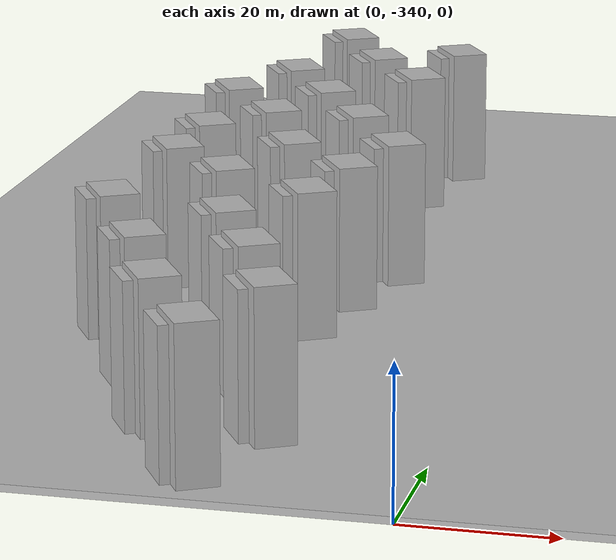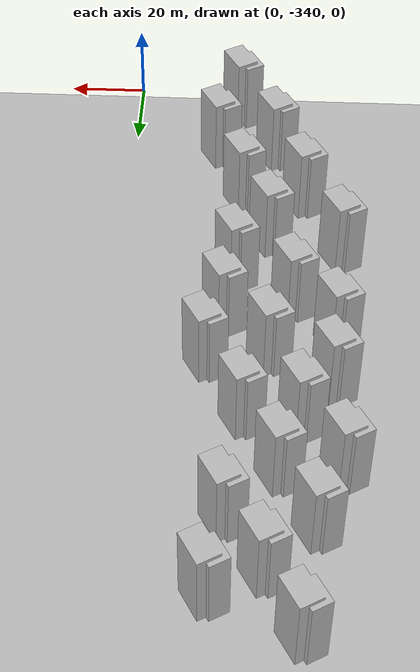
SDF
<sdf version="1.7">
 <world name="default">
  <model name="ground_plane">
   <static>1</static>
   <link name="link">
    <collision name="collision">
     <geometry><mesh><uri>model://ground_plane/scripts/plane.dae</uri><normal>0 0 1</normal></mesh></geometry>
     <surface><friction><ode><mu>100</mu><mu2>50</mu2></ode></friction></surface>
    </collision>
    <visual name="visual">
     <geometry><mesh><uri>model://ground_plane/scripts/plane.dae</uri><normal>0 0 1</normal></mesh></geometry>
     <material>
      <lighting>1</lighting>
      <script><uri>model://ground_plane/scripts/plane.jpg</uri><name>__default__</name></script>
      <shader type="pixel"/>
     </material>
    </visual>
   </link>
  </model>
  <model name="apartment4_clone_23">
   <static>1</static>
   <link name="link_0">
    <inertial>
     <mass>1</mass>
     <inertia>
      <ixx>0.166667</ixx>
      <ixy>0</ixy>
      <ixz>0</ixz>
      <iyy>0.166667</iyy>
      <iyz>0</iyz>
      <izz>0.166667</izz>
     </inertia>
    </inertial>
    <pose>1e-06 -0 0 0 -0 0</pose>
    <visual name="visual">
     <geometry>
      <mesh><uri>model://apartment4/scripts/apartment1.dae</uri><scale>0.14 0.14 0.175</scale></mesh>
     </geometry>
     <material>
      <lighting>1</lighting>
      <script><uri>model://apartment4/scripts/apartment1.jpg</uri><name>__default__</name></script>
      <shader type="pixel"/>
     </material>
    </visual>
    <collision name="collision">
     <geometry>
      <mesh><uri>model://apartment4/scripts/apartment1.dae</uri><scale>0.14 0.14 0.175</scale></mesh>
     </geometry>
     <surface>
      <friction>
       <ode><mu>1</mu><mu2>1</mu2><fdir1>0 0 0</fdir1><slip1>0</slip1><slip2>0</slip2></ode>
       <torsional>
        <coefficient>1</coefficient>
        <patch_radius>0</patch_radius>
        <surface_radius>0</surface_radius>
        <use_patch_radius>1</use_patch_radius>
        <ode><slip>0</slip></ode>
       </torsional>
      </friction>
      <bounce><restitution_coefficient>0</restitution_coefficient><threshold>1e+06</threshold></bounce>
      <contact>
       <collide_without_contact>0</collide_without_contact>
       <collide_without_contact_bitmask>1</collide_without_contact_bitmask>
       <collide_bitmask>1</collide_bitmask>
       <ode>
        <soft_cfm>0</soft_cfm>
        <soft_erp>0.2</soft_erp>
        <kp>1e+13</kp>
        <kd>1</kd>
        <max_vel>0.01</max_vel>
        <min_depth>0</min_depth>
       </ode>
       <bullet>
        <split_impulse>1</split_impulse>
        <split_impulse_penetration_threshold>-0.01</split_impulse_penetration_threshold>
        <soft_cfm>0</soft_cfm>
        <soft_erp>0.2</soft_erp>
        <kp>1e+13</kp>
        <kd>1</kd>
       </bullet>
      </contact>
     </surface>
    </collision>
   </link>
   <static>0</static>
   <pose>-23.4944 -175.495 0 0 -0 0.524325</pose>
  </model>
  <model name="apartment4_clone_35">
   <static>1</static>
   <link name="link_0">
    <inertial>
     <mass>1</mass>
     <inertia>
      <ixx>0.166667</ixx>
      <ixy>0</ixy>
      <ixz>0</ixz>
      <iyy>0.166667</iyy>
      <iyz>0</iyz>
      <izz>0.166667</izz>
     </inertia>
    </inertial>
    <pose>1e-06 -0 0 0 -0 0</pose>
    <visual name="visual">
     <geometry>
      <mesh><uri>model://apartment4/scripts/apartment1.dae</uri><scale>0.14 0.14 0.175</scale></mesh>
     </geometry>
     <material>
      <lighting>1</lighting>
      <script><uri>model://apartment4/scripts/apartment1.jpg</uri><name>__default__</name></script>
      <shader type="pixel"/>
     </material>
    </visual>
    <collision name="collision">
     <geometry>
      <mesh><uri>model://apartment4/scripts/apartment1.dae</uri><scale>0.14 0.14 0.175</scale></mesh>
     </geometry>
     <surface>
      <friction>
       <ode><mu>1</mu><mu2>1</mu2><fdir1>0 0 0</fdir1><slip1>0</slip1><slip2>0</slip2></ode>
       <torsional>
        <coefficient>1</coefficient>
        <patch_radius>0</patch_radius>
        <surface_radius>0</surface_radius>
        <use_patch_radius>1</use_patch_radius>
        <ode><slip>0</slip></ode>
       </torsional>
      </friction>
      <bounce><restitution_coefficient>0</restitution_coefficient><threshold>1e+06</threshold></bounce>
      <contact>
       <collide_without_contact>0</collide_without_contact>
       <collide_without_contact_bitmask>1</collide_without_contact_bitmask>
       <collide_bitmask>1</collide_bitmask>
       <ode>
        <soft_cfm>0</soft_cfm>
        <soft_erp>0.2</soft_erp>
        <kp>1e+13</kp>
        <kd>1</kd>
        <max_vel>0.01</max_vel>
        <min_depth>0</min_depth>
       </ode>
       <bullet>
        <split_impulse>1</split_impulse>
        <split_impulse_penetration_threshold>-0.01</split_impulse_penetration_threshold>
        <soft_cfm>0</soft_cfm>
        <soft_erp>0.2</soft_erp>
        <kp>1e+13</kp>
        <kd>1</kd>
       </bullet>
      </contact>
     </surface>
    </collision>
   </link>
   <static>0</static>
   <pose>-43.3556 -166.685 0 0 -0 0.524325</pose>
  </model>
  <model name="apartment4_clone_36">
   <static>1</static>
   <link name="link_0">
    <inertial>
     <mass>1</mass>
     <inertia>
      <ixx>0.166667</ixx>
      <ixy>0</ixy>
      <ixz>0</ixz>
      <iyy>0.166667</iyy>
      <iyz>0</iyz>
      <izz>0.166667</izz>
     </inertia>
    </inertial>
    <pose>1e-06 -0 0 0 -0 0</pose>
    <visual name="visual">
     <geometry>
      <mesh><uri>model://apartment4/scripts/apartment1.dae</uri><scale>0.14 0.14 0.175</scale></mesh>
     </geometry>
     <material>
      <lighting>1</lighting>
      <script><uri>model://apartment4/scripts/apartment1.jpg</uri><name>__default__</name></script>
      <shader type="pixel"/>
     </material>
    </visual>
    <collision name="collision">
     <geometry>
      <mesh><uri>model://apartment4/scripts/apartment1.dae</uri><scale>0.14 0.14 0.175</scale></mesh>
     </geometry>
     <surface>
      <friction>
       <ode><mu>1</mu><mu2>1</mu2><fdir1>0 0 0</fdir1><slip1>0</slip1><slip2>0</slip2></ode>
       <torsional>
        <coefficient>1</coefficient>
        <patch_radius>0</patch_radius>
        <surface_radius>0</surface_radius>
        <use_patch_radius>1</use_patch_radius>
        <ode><slip>0</slip></ode>
       </torsional>
      </friction>
      <bounce><restitution_coefficient>0</restitution_coefficient><threshold>1e+06</threshold></bounce>
      <contact>
       <collide_without_contact>0</collide_without_contact>
       <collide_without_contact_bitmask>1</collide_without_contact_bitmask>
       <collide_bitmask>1</collide_bitmask>
       <ode>
        <soft_cfm>0</soft_cfm>
        <soft_erp>0.2</soft_erp>
        <kp>1e+13</kp>
        <kd>1</kd>
        <max_vel>0.01</max_vel>
        <min_depth>0</min_depth>
       </ode>
       <bullet>
        <split_impulse>1</split_impulse>
        <split_impulse_penetration_threshold>-0.01</split_impulse_penetration_threshold>
        <soft_cfm>0</soft_cfm>
        <soft_erp>0.2</soft_erp>
        <kp>1e+13</kp>
        <kd>1</kd>
       </bullet>
      </contact>
     </surface>
    </collision>
   </link>
   <static>0</static>
   <pose>-35.4278 -181.358 0 0 -0 0.524325</pose>
  </model>
  <model name="apartment4_clone_37">
   <static>1</static>
   <link name="link_0">
    <inertial>
     <mass>1</mass>
     <inertia>
      <ixx>0.166667</ixx>
      <ixy>0</ixy>
      <ixz>0</ixz>
      <iyy>0.166667</iyy>
      <iyz>0</iyz>
      <izz>0.166667</izz>
     </inertia>
    </inertial>
    <pose>1e-06 -0 0 0 -0 0</pose>
    <visual name="visual">
     <geometry>
      <mesh><uri>model://apartment4/scripts/apartment1.dae</uri><scale>0.14 0.14 0.175</scale></mesh>
     </geometry>
     <material>
      <lighting>1</lighting>
      <script><uri>model://apartment4/scripts/apartment1.jpg</uri><name>__default__</name></script>
      <shader type="pixel"/>
     </material>
    </visual>
    <collision name="collision">
     <geometry>
      <mesh><uri>model://apartment4/scripts/apartment1.dae</uri><scale>0.14 0.14 0.175</scale></mesh>
     </geometry>
     <surface>
      <friction>
       <ode><mu>1</mu><mu2>1</mu2><fdir1>0 0 0</fdir1><slip1>0</slip1><slip2>0</slip2></ode>
       <torsional>
        <coefficient>1</coefficient>
        <patch_radius>0</patch_radius>
        <surface_radius>0</surface_radius>
        <use_patch_radius>1</use_patch_radius>
        <ode><slip>0</slip></ode>
       </torsional>
      </friction>
      <bounce><restitution_coefficient>0</restitution_coefficient><threshold>1e+06</threshold></bounce>
      <contact>
       <collide_without_contact>0</collide_without_contact>
       <collide_without_contact_bitmask>1</collide_without_contact_bitmask>
       <collide_bitmask>1</collide_bitmask>
       <ode>
        <soft_cfm>0</soft_cfm>
        <soft_erp>0.2</soft_erp>
        <kp>1e+13</kp>
        <kd>1</kd>
        <max_vel>0.01</max_vel>
        <min_depth>0</min_depth>
       </ode>
       <bullet>
        <split_impulse>1</split_impulse>
        <split_impulse_penetration_threshold>-0.01</split_impulse_penetration_threshold>
        <soft_cfm>0</soft_cfm>
        <soft_erp>0.2</soft_erp>
        <kp>1e+13</kp>
        <kd>1</kd>
       </bullet>
      </contact>
     </surface>
    </collision>
   </link>
   <static>0</static>
   <pose>-26.6613 -194.519 0 0 -0 0.524325</pose>
  </model>
  <model name="apartment4_clone_51">
   <static>1</static>
   <link name="link_0">
    <inertial>
     <mass>1</mass>
     <inertia>
      <ixx>0.166667</ixx>
      <ixy>0</ixy>
      <ixz>0</ixz>
      <iyy>0.166667</iyy>
      <iyz>0</iyz>
      <izz>0.166667</izz>
     </inertia>
    </inertial>
    <pose>1e-06 -0 0 0 -0 0</pose>
    <visual name="visual">
     <geometry>
      <mesh><uri>model://apartment4/scripts/apartment1.dae</uri><scale>0.14 0.14 0.175</scale></mesh>
     </geometry>
     <material>
      <lighting>1</lighting>
      <script><uri>model://apartment4/scripts/apartment1.jpg</uri><name>__default__</name></script>
      <shader type="pixel"/>
     </material>
    </visual>
    <collision name="collision">
     <geometry>
      <mesh><uri>model://apartment4/scripts/apartment1.dae</uri><scale>0.14 0.14 0.175</scale></mesh>
     </geometry>
     <surface>
      <friction>
       <ode><mu>1</mu><mu2>1</mu2><fdir1>0 0 0</fdir1><slip1>0</slip1><slip2>0</slip2></ode>
       <torsional>
        <coefficient>1</coefficient>
        <patch_radius>0</patch_radius>
        <surface_radius>0</surface_radius>
        <use_patch_radius>1</use_patch_radius>
        <ode><slip>0</slip></ode>
       </torsional>
      </friction>
      <bounce><restitution_coefficient>0</restitution_coefficient><threshold>1e+06</threshold></bounce>
      <contact>
       <collide_without_contact>0</collide_without_contact>
       <collide_without_contact_bitmask>1</collide_without_contact_bitmask>
       <collide_bitmask>1</collide_bitmask>
       <ode>
        <soft_cfm>0</soft_cfm>
        <soft_erp>0.2</soft_erp>
        <kp>1e+13</kp>
        <kd>1</kd>
        <max_vel>0.01</max_vel>
        <min_depth>0</min_depth>
       </ode>
       <bullet>
        <split_impulse>1</split_impulse>
        <split_impulse_penetration_threshold>-0.01</split_impulse_penetration_threshold>
        <soft_cfm>0</soft_cfm>
        <soft_erp>0.2</soft_erp>
        <kp>1e+13</kp>
        <kd>1</kd>
       </bullet>
      </contact>
     </surface>
    </collision>
   </link>
   <static>0</static>
   <pose>-20.9777 -238.346 0 0 -0 0.524325</pose>
  </model>
  <model name="apartment4_clone_52">
   <static>1</static>
   <link name="link_0">
    <inertial>
     <mass>1</mass>
     <inertia>
      <ixx>0.166667</ixx>
      <ixy>0</ixy>
      <ixz>0</ixz>
      <iyy>0.166667</iyy>
      <iyz>0</iyz>
      <izz>0.166667</izz>
     </inertia>
    </inertial>
    <pose>1e-06 -0 0 0 -0 0</pose>
    <visual name="visual">
     <geometry>
      <mesh><uri>model://apartment4/scripts/apartment1.dae</uri><scale>0.14 0.14 0.175</scale></mesh>
     </geometry>
     <material>
      <lighting>1</lighting>
      <script><uri>model://apartment4/scripts/apartment1.jpg</uri><name>__default__</name></script>
      <shader type="pixel"/>
     </material>
    </visual>
    <collision name="collision">
     <geometry>
      <mesh><uri>model://apartment4/scripts/apartment1.dae</uri><scale>0.14 0.14 0.175</scale></mesh>
     </geometry>
     <surface>
      <friction>
       <ode><mu>1</mu><mu2>1</mu2><fdir1>0 0 0</fdir1><slip1>0</slip1><slip2>0</slip2></ode>
       <torsional>
        <coefficient>1</coefficient>
        <patch_radius>0</patch_radius>
        <surface_radius>0</surface_radius>
        <use_patch_radius>1</use_patch_radius>
        <ode><slip>0</slip></ode>
       </torsional>
      </friction>
      <bounce><restitution_coefficient>0</restitution_coefficient><threshold>1e+06</threshold></bounce>
      <contact>
       <collide_without_contact>0</collide_without_contact>
       <collide_without_contact_bitmask>1</collide_without_contact_bitmask>
       <collide_bitmask>1</collide_bitmask>
       <ode>
        <soft_cfm>0</soft_cfm>
        <soft_erp>0.2</soft_erp>
        <kp>1e+13</kp>
        <kd>1</kd>
        <max_vel>0.01</max_vel>
        <min_depth>0</min_depth>
       </ode>
       <bullet>
        <split_impulse>1</split_impulse>
        <split_impulse_penetration_threshold>-0.01</split_impulse_penetration_threshold>
        <soft_cfm>0</soft_cfm>
        <soft_erp>0.2</soft_erp>
        <kp>1e+13</kp>
        <kd>1</kd>
       </bullet>
      </contact>
     </surface>
    </collision>
   </link>
   <static>0</static>
   <pose>-29.9273 -221.971 0 0 -0 0.524325</pose>
  </model>
  <model name="apartment4_clone_53">
   <static>1</static>
   <link name="link_0">
    <inertial>
     <mass>1</mass>
     <inertia>
      <ixx>0.166667</ixx>
      <ixy>0</ixy>
      <ixz>0</ixz>
      <iyy>0.166667</iyy>
      <iyz>0</iyz>
      <izz>0.166667</izz>
     </inertia>
    </inertial>
    <pose>1e-06 -0 0 0 -0 0</pose>
    <visual name="visual">
     <geometry>
      <mesh><uri>model://apartment4/scripts/apartment1.dae</uri><scale>0.14 0.14 0.175</scale></mesh>
     </geometry>
     <material>
      <lighting>1</lighting>
      <script><uri>model://apartment4/scripts/apartment1.jpg</uri><name>__default__</name></script>
      <shader type="pixel"/>
     </material>
    </visual>
    <collision name="collision">
     <geometry>
      <mesh><uri>model://apartment4/scripts/apartment1.dae</uri><scale>0.14 0.14 0.175</scale></mesh>
     </geometry>
     <surface>
      <friction>
       <ode><mu>1</mu><mu2>1</mu2><fdir1>0 0 0</fdir1><slip1>0</slip1><slip2>0</slip2></ode>
       <torsional>
        <coefficient>1</coefficient>
        <patch_radius>0</patch_radius>
        <surface_radius>0</surface_radius>
        <use_patch_radius>1</use_patch_radius>
        <ode><slip>0</slip></ode>
       </torsional>
      </friction>
      <bounce><restitution_coefficient>0</restitution_coefficient><threshold>1e+06</threshold></bounce>
      <contact>
       <collide_without_contact>0</collide_without_contact>
       <collide_without_contact_bitmask>1</collide_without_contact_bitmask>
       <collide_bitmask>1</collide_bitmask>
       <ode>
        <soft_cfm>0</soft_cfm>
        <soft_erp>0.2</soft_erp>
        <kp>1e+13</kp>
        <kd>1</kd>
        <max_vel>0.01</max_vel>
        <min_depth>0</min_depth>
       </ode>
       <bullet>
        <split_impulse>1</split_impulse>
        <split_impulse_penetration_threshold>-0.01</split_impulse_penetration_threshold>
        <soft_cfm>0</soft_cfm>
        <soft_erp>0.2</soft_erp>
        <kp>1e+13</kp>
        <kd>1</kd>
       </bullet>
      </contact>
     </surface>
    </collision>
   </link>
   <static>0</static>
   <pose>-38.4342 -206.776 0 0 -0 0.524325</pose>
  </model>
  <model name="apartment4_clone_54">
   <static>1</static>
   <link name="link_0">
    <inertial>
     <mass>1</mass>
     <inertia>
      <ixx>0.166667</ixx>
      <ixy>0</ixy>
      <ixz>0</ixz>
      <iyy>0.166667</iyy>
      <iyz>0</iyz>
      <izz>0.166667</izz>
     </inertia>
    </inertial>
    <pose>1e-06 -0 0 0 -0 0</pose>
    <visual name="visual">
     <geometry>
      <mesh><uri>model://apartment4/scripts/apartment1.dae</uri><scale>0.14 0.14 0.175</scale></mesh>
     </geometry>
     <material>
      <lighting>1</lighting>
      <script><uri>model://apartment4/scripts/apartment1.jpg</uri><name>__default__</name></script>
      <shader type="pixel"/>
     </material>
    </visual>
    <collision name="collision">
     <geometry>
      <mesh><uri>model://apartment4/scripts/apartment1.dae</uri><scale>0.14 0.14 0.175</scale></mesh>
     </geometry>
     <surface>
      <friction>
       <ode><mu>1</mu><mu2>1</mu2><fdir1>0 0 0</fdir1><slip1>0</slip1><slip2>0</slip2></ode>
       <torsional>
        <coefficient>1</coefficient>
        <patch_radius>0</patch_radius>
        <surface_radius>0</surface_radius>
        <use_patch_radius>1</use_patch_radius>
        <ode><slip>0</slip></ode>
       </torsional>
      </friction>
      <bounce><restitution_coefficient>0</restitution_coefficient><threshold>1e+06</threshold></bounce>
      <contact>
       <collide_without_contact>0</collide_without_contact>
       <collide_without_contact_bitmask>1</collide_without_contact_bitmask>
       <collide_bitmask>1</collide_bitmask>
       <ode>
        <soft_cfm>0</soft_cfm>
        <soft_erp>0.2</soft_erp>
        <kp>1e+13</kp>
        <kd>1</kd>
        <max_vel>0.01</max_vel>
        <min_depth>0</min_depth>
       </ode>
       <bullet>
        <split_impulse>1</split_impulse>
        <split_impulse_penetration_threshold>-0.01</split_impulse_penetration_threshold>
        <soft_cfm>0</soft_cfm>
        <soft_erp>0.2</soft_erp>
        <kp>1e+13</kp>
        <kd>1</kd>
       </bullet>
      </contact>
     </surface>
    </collision>
   </link>
   <static>0</static>
   <pose>-46.6954 -192.516 0 0 -0 0.524325</pose>
  </model>
  <model name="apartment4_clone_58">
   <static>1</static>
   <link name="link_0">
    <inertial>
     <mass>1</mass>
     <inertia>
      <ixx>0.166667</ixx>
      <ixy>0</ixy>
      <ixz>0</ixz>
      <iyy>0.166667</iyy>
      <iyz>0</iyz>
      <izz>0.166667</izz>
     </inertia>
    </inertial>
    <pose>1e-06 -0 0 0 -0 0</pose>
    <visual name="visual">
     <geometry>
      <mesh><uri>model://apartment4/scripts/apartment1.dae</uri><scale>0.14 0.14 0.175</scale></mesh>
     </geometry>
     <material>
      <lighting>1</lighting>
      <script><uri>model://apartment4/scripts/apartment1.jpg</uri><name>__default__</name></script>
      <shader type="pixel"/>
     </material>
    </visual>
    <collision name="collision">
     <geometry>
      <mesh><uri>model://apartment4/scripts/apartment1.dae</uri><scale>0.14 0.14 0.175</scale></mesh>
     </geometry>
     <surface>
      <friction>
       <ode><mu>1</mu><mu2>1</mu2><fdir1>0 0 0</fdir1><slip1>0</slip1><slip2>0</slip2></ode>
       <torsional>
        <coefficient>1</coefficient>
        <patch_radius>0</patch_radius>
        <surface_radius>0</surface_radius>
        <use_patch_radius>1</use_patch_radius>
        <ode><slip>0</slip></ode>
       </torsional>
      </friction>
      <bounce><restitution_coefficient>0</restitution_coefficient><threshold>1e+06</threshold></bounce>
      <contact>
       <collide_without_contact>0</collide_without_contact>
       <collide_without_contact_bitmask>1</collide_without_contact_bitmask>
       <collide_bitmask>1</collide_bitmask>
       <ode>
        <soft_cfm>0</soft_cfm>
        <soft_erp>0.2</soft_erp>
        <kp>1e+13</kp>
        <kd>1</kd>
        <max_vel>0.01</max_vel>
        <min_depth>0</min_depth>
       </ode>
       <bullet>
        <split_impulse>1</split_impulse>
        <split_impulse_penetration_threshold>-0.01</split_impulse_penetration_threshold>
        <soft_cfm>0</soft_cfm>
        <soft_erp>0.2</soft_erp>
        <kp>1e+13</kp>
        <kd>1</kd>
       </bullet>
      </contact>
     </surface>
    </collision>
   </link>
   <static>0</static>
   <pose>-27.4329 -329.928 0 0 -0 0.524325</pose>
  </model>
  <model name="apartment4_clone_59">
   <static>1</static>
   <link name="link_0">
    <inertial>
     <mass>1</mass>
     <inertia>
      <ixx>0.166667</ixx>
      <ixy>0</ixy>
      <ixz>0</ixz>
      <iyy>0.166667</iyy>
      <iyz>0</iyz>
      <izz>0.166667</izz>
     </inertia>
    </inertial>
    <pose>1e-06 -0 0 0 -0 0</pose>
    <visual name="visual">
     <geometry>
      <mesh><uri>model://apartment4/scripts/apartment1.dae</uri><scale>0.14 0.14 0.175</scale></mesh>
     </geometry>
     <material>
      <lighting>1</lighting>
      <script><uri>model://apartment4/scripts/apartment1.jpg</uri><name>__default__</name></script>
      <shader type="pixel"/>
     </material>
    </visual>
    <collision name="collision">
     <geometry>
      <mesh><uri>model://apartment4/scripts/apartment1.dae</uri><scale>0.14 0.14 0.175</scale></mesh>
     </geometry>
     <surface>
      <friction>
       <ode><mu>1</mu><mu2>1</mu2><fdir1>0 0 0</fdir1><slip1>0</slip1><slip2>0</slip2></ode>
       <torsional>
        <coefficient>1</coefficient>
        <patch_radius>0</patch_radius>
        <surface_radius>0</surface_radius>
        <use_patch_radius>1</use_patch_radius>
        <ode><slip>0</slip></ode>
       </torsional>
      </friction>
      <bounce><restitution_coefficient>0</restitution_coefficient><threshold>1e+06</threshold></bounce>
      <contact>
       <collide_without_contact>0</collide_without_contact>
       <collide_without_contact_bitmask>1</collide_without_contact_bitmask>
       <collide_bitmask>1</collide_bitmask>
       <ode>
        <soft_cfm>0</soft_cfm>
        <soft_erp>0.2</soft_erp>
        <kp>1e+13</kp>
        <kd>1</kd>
        <max_vel>0.01</max_vel>
        <min_depth>0</min_depth>
       </ode>
       <bullet>
        <split_impulse>1</split_impulse>
        <split_impulse_penetration_threshold>-0.01</split_impulse_penetration_threshold>
        <soft_cfm>0</soft_cfm>
        <soft_erp>0.2</soft_erp>
        <kp>1e+13</kp>
        <kd>1</kd>
       </bullet>
      </contact>
     </surface>
    </collision>
   </link>
   <static>0</static>
   <pose>-36.897 -312.721 0 0 -0 0.524325</pose>
  </model>
  <model name="apartment4_clone_60">
   <static>1</static>
   <link name="link_0">
    <inertial>
     <mass>1</mass>
     <inertia>
      <ixx>0.166667</ixx>
      <ixy>0</ixy>
      <ixz>0</ixz>
      <iyy>0.166667</iyy>
      <iyz>0</iyz>
      <izz>0.166667</izz>
     </inertia>
    </inertial>
    <pose>1e-06 -0 0 0 -0 0</pose>
    <visual name="visual">
     <geometry>
      <mesh><uri>model://apartment4/scripts/apartment1.dae</uri><scale>0.14 0.14 0.175</scale></mesh>
     </geometry>
     <material>
      <lighting>1</lighting>
      <script><uri>model://apartment4/scripts/apartment1.jpg</uri><name>__default__</name></script>
      <shader type="pixel"/>
     </material>
    </visual>
    <collision name="collision">
     <geometry>
      <mesh><uri>model://apartment4/scripts/apartment1.dae</uri><scale>0.14 0.14 0.175</scale></mesh>
     </geometry>
     <surface>
      <friction>
       <ode><mu>1</mu><mu2>1</mu2><fdir1>0 0 0</fdir1><slip1>0</slip1><slip2>0</slip2></ode>
       <torsional>
        <coefficient>1</coefficient>
        <patch_radius>0</patch_radius>
        <surface_radius>0</surface_radius>
        <use_patch_radius>1</use_patch_radius>
        <ode><slip>0</slip></ode>
       </torsional>
      </friction>
      <bounce><restitution_coefficient>0</restitution_coefficient><threshold>1e+06</threshold></bounce>
      <contact>
       <collide_without_contact>0</collide_without_contact>
       <collide_without_contact_bitmask>1</collide_without_contact_bitmask>
       <collide_bitmask>1</collide_bitmask>
       <ode>
        <soft_cfm>0</soft_cfm>
        <soft_erp>0.2</soft_erp>
        <kp>1e+13</kp>
        <kd>1</kd>
        <max_vel>0.01</max_vel>
        <min_depth>0</min_depth>
       </ode>
       <bullet>
        <split_impulse>1</split_impulse>
        <split_impulse_penetration_threshold>-0.01</split_impulse_penetration_threshold>
        <soft_cfm>0</soft_cfm>
        <soft_erp>0.2</soft_erp>
        <kp>1e+13</kp>
        <kd>1</kd>
       </bullet>
      </contact>
     </surface>
    </collision>
   </link>
   <static>0</static>
   <pose>-44.0733 -294.628 0 0 -0 0.524325</pose>
  </model>
  <model name="apartment4_clone_61">
   <static>1</static>
   <link name="link_0">
    <inertial>
     <mass>1</mass>
     <inertia>
      <ixx>0.166667</ixx>
      <ixy>0</ixy>
      <ixz>0</ixz>
      <iyy>0.166667</iyy>
      <iyz>0</iyz>
      <izz>0.166667</izz>
     </inertia>
    </inertial>
    <pose>1e-06 -0 0 0 -0 0</pose>
    <visual name="visual">
     <geometry>
      <mesh><uri>model://apartment4/scripts/apartment1.dae</uri><scale>0.14 0.14 0.175</scale></mesh>
     </geometry>
     <material>
      <lighting>1</lighting>
      <script><uri>model://apartment4/scripts/apartment1.jpg</uri><name>__default__</name></script>
      <shader type="pixel"/>
     </material>
    </visual>
    <collision name="collision">
     <geometry>
      <mesh><uri>model://apartment4/scripts/apartment1.dae</uri><scale>0.14 0.14 0.175</scale></mesh>
     </geometry>
     <surface>
      <friction>
       <ode><mu>1</mu><mu2>1</mu2><fdir1>0 0 0</fdir1><slip1>0</slip1><slip2>0</slip2></ode>
       <torsional>
        <coefficient>1</coefficient>
        <patch_radius>0</patch_radius>
        <surface_radius>0</surface_radius>
        <use_patch_radius>1</use_patch_radius>
        <ode><slip>0</slip></ode>
       </torsional>
      </friction>
      <bounce><restitution_coefficient>0</restitution_coefficient><threshold>1e+06</threshold></bounce>
      <contact>
       <collide_without_contact>0</collide_without_contact>
       <collide_without_contact_bitmask>1</collide_without_contact_bitmask>
       <collide_bitmask>1</collide_bitmask>
       <ode>
        <soft_cfm>0</soft_cfm>
        <soft_erp>0.2</soft_erp>
        <kp>1e+13</kp>
        <kd>1</kd>
        <max_vel>0.01</max_vel>
        <min_depth>0</min_depth>
       </ode>
       <bullet>
        <split_impulse>1</split_impulse>
        <split_impulse_penetration_threshold>-0.01</split_impulse_penetration_threshold>
        <soft_cfm>0</soft_cfm>
        <soft_erp>0.2</soft_erp>
        <kp>1e+13</kp>
        <kd>1</kd>
       </bullet>
      </contact>
     </surface>
    </collision>
   </link>
   <static>0</static>
   <pose>-53.2501 -275.318 0 0 -0 0.524325</pose>
  </model>
  <model name="apartment4_clone_74">
   <static>1</static>
   <link name="link_0">
    <inertial>
     <mass>1</mass>
     <inertia>
      <ixx>0.166667</ixx>
      <ixy>0</ixy>
      <ixz>0</ixz>
      <iyy>0.166667</iyy>
      <iyz>0</iyz>
      <izz>0.166667</izz>
     </inertia>
    </inertial>
    <pose>1e-06 -0 0 0 -0 0</pose>
    <visual name="visual">
     <geometry>
      <mesh><uri>model://apartment4/scripts/apartment1.dae</uri><scale>0.14 0.14 0.175</scale></mesh>
     </geometry>
     <material>
      <lighting>1</lighting>
      <script><uri>model://apartment4/scripts/apartment1.jpg</uri><name>__default__</name></script>
      <shader type="pixel"/>
     </material>
    </visual>
    <collision name="collision">
     <geometry>
      <mesh><uri>model://apartment4/scripts/apartment1.dae</uri><scale>0.14 0.14 0.175</scale></mesh>
     </geometry>
     <surface>
      <friction>
       <ode><mu>1</mu><mu2>1</mu2><fdir1>0 0 0</fdir1><slip1>0</slip1><slip2>0</slip2></ode>
       <torsional>
        <coefficient>1</coefficient>
        <patch_radius>0</patch_radius>
        <surface_radius>0</surface_radius>
        <use_patch_radius>1</use_patch_radius>
        <ode><slip>0</slip></ode>
       </torsional>
      </friction>
      <bounce><restitution_coefficient>0</restitution_coefficient><threshold>1e+06</threshold></bounce>
      <contact>
       <collide_without_contact>0</collide_without_contact>
       <collide_without_contact_bitmask>1</collide_without_contact_bitmask>
       <collide_bitmask>1</collide_bitmask>
       <ode>
        <soft_cfm>0</soft_cfm>
        <soft_erp>0.2</soft_erp>
        <kp>1e+13</kp>
        <kd>1</kd>
        <max_vel>0.01</max_vel>
        <min_depth>0</min_depth>
       </ode>
       <bullet>
        <split_impulse>1</split_impulse>
        <split_impulse_penetration_threshold>-0.01</split_impulse_penetration_threshold>
        <soft_cfm>0</soft_cfm>
        <soft_erp>0.2</soft_erp>
        <kp>1e+13</kp>
        <kd>1</kd>
       </bullet>
      </contact>
     </surface>
    </collision>
   </link>
   <static>0</static>
   <pose>-51.8434 -247.223 0 0 -0 0.524325</pose>
  </model>
  <model name="apartment4_clone_75">
   <static>1</static>
   <link name="link_0">
    <inertial>
     <mass>1</mass>
     <inertia>
      <ixx>0.166667</ixx>
      <ixy>0</ixy>
      <ixz>0</ixz>
      <iyy>0.166667</iyy>
      <iyz>0</iyz>
      <izz>0.166667</izz>
     </inertia>
    </inertial>
    <pose>1e-06 -0 0 0 -0 0</pose>
    <visual name="visual">
     <geometry>
      <mesh><uri>model://apartment4/scripts/apartment1.dae</uri><scale>0.14 0.14 0.175</scale></mesh>
     </geometry>
     <material>
      <lighting>1</lighting>
      <script><uri>model://apartment4/scripts/apartment1.jpg</uri><name>__default__</name></script>
      <shader type="pixel"/>
     </material>
    </visual>
    <collision name="collision">
     <geometry>
      <mesh><uri>model://apartment4/scripts/apartment1.dae</uri><scale>0.14 0.14 0.175</scale></mesh>
     </geometry>
     <surface>
      <friction>
       <ode><mu>1</mu><mu2>1</mu2><fdir1>0 0 0</fdir1><slip1>0</slip1><slip2>0</slip2></ode>
       <torsional>
        <coefficient>1</coefficient>
        <patch_radius>0</patch_radius>
        <surface_radius>0</surface_radius>
        <use_patch_radius>1</use_patch_radius>
        <ode><slip>0</slip></ode>
       </torsional>
      </friction>
      <bounce><restitution_coefficient>0</restitution_coefficient><threshold>1e+06</threshold></bounce>
      <contact>
       <collide_without_contact>0</collide_without_contact>
       <collide_without_contact_bitmask>1</collide_without_contact_bitmask>
       <collide_bitmask>1</collide_bitmask>
       <ode>
        <soft_cfm>0</soft_cfm>
        <soft_erp>0.2</soft_erp>
        <kp>1e+13</kp>
        <kd>1</kd>
        <max_vel>0.01</max_vel>
        <min_depth>0</min_depth>
       </ode>
       <bullet>
        <split_impulse>1</split_impulse>
        <split_impulse_penetration_threshold>-0.01</split_impulse_penetration_threshold>
        <soft_cfm>0</soft_cfm>
        <soft_erp>0.2</soft_erp>
        <kp>1e+13</kp>
        <kd>1</kd>
       </bullet>
      </contact>
     </surface>
    </collision>
   </link>
   <static>0</static>
   <pose>-41.525 -258.092 0 0 -0 0.524325</pose>
  </model>
  <model name="apartment4_clone_76">
   <static>1</static>
   <link name="link_0">
    <inertial>
     <mass>1</mass>
     <inertia>
      <ixx>0.166667</ixx>
      <ixy>0</ixy>
      <ixz>0</ixz>
      <iyy>0.166667</iyy>
      <iyz>0</iyz>
      <izz>0.166667</izz>
     </inertia>
    </inertial>
    <pose>1e-06 -0 0 0 -0 0</pose>
    <visual name="visual">
     <geometry>
      <mesh><uri>model://apartment4/scripts/apartment1.dae</uri><scale>0.14 0.14 0.175</scale></mesh>
     </geometry>
     <material>
      <lighting>1</lighting>
      <script><uri>model://apartment4/scripts/apartment1.jpg</uri><name>__default__</name></script>
      <shader type="pixel"/>
     </material>
    </visual>
    <collision name="collision">
     <geometry>
      <mesh><uri>model://apartment4/scripts/apartment1.dae</uri><scale>0.14 0.14 0.175</scale></mesh>
     </geometry>
     <surface>
      <friction>
       <ode><mu>1</mu><mu2>1</mu2><fdir1>0 0 0</fdir1><slip1>0</slip1><slip2>0</slip2></ode>
       <torsional>
        <coefficient>1</coefficient>
        <patch_radius>0</patch_radius>
        <surface_radius>0</surface_radius>
        <use_patch_radius>1</use_patch_radius>
        <ode><slip>0</slip></ode>
       </torsional>
      </friction>
      <bounce><restitution_coefficient>0</restitution_coefficient><threshold>1e+06</threshold></bounce>
      <contact>
       <collide_without_contact>0</collide_without_contact>
       <collide_without_contact_bitmask>1</collide_without_contact_bitmask>
       <collide_bitmask>1</collide_bitmask>
       <ode>
        <soft_cfm>0</soft_cfm>
        <soft_erp>0.2</soft_erp>
        <kp>1e+13</kp>
        <kd>1</kd>
        <max_vel>0.01</max_vel>
        <min_depth>0</min_depth>
       </ode>
       <bullet>
        <split_impulse>1</split_impulse>
        <split_impulse_penetration_threshold>-0.01</split_impulse_penetration_threshold>
        <soft_cfm>0</soft_cfm>
        <soft_erp>0.2</soft_erp>
        <kp>1e+13</kp>
        <kd>1</kd>
       </bullet>
      </contact>
     </surface>
    </collision>
   </link>
   <static>0</static>
   <pose>-35.6991 -279.946 0 0 -0 0.524325</pose>
  </model>
  <model name="apartment4_clone_77">
   <static>1</static>
   <link name="link_0">
    <inertial>
     <mass>1</mass>
     <inertia>
      <ixx>0.166667</ixx>
      <ixy>0</ixy>
      <ixz>0</ixz>
      <iyy>0.166667</iyy>
      <iyz>0</iyz>
      <izz>0.166667</izz>
     </inertia>
    </inertial>
    <pose>1e-06 -0 0 0 -0 0</pose>
    <visual name="visual">
     <geometry>
      <mesh><uri>model://apartment4/scripts/apartment1.dae</uri><scale>0.14 0.14 0.175</scale></mesh>
     </geometry>
     <material>
      <lighting>1</lighting>
      <script><uri>model://apartment4/scripts/apartment1.jpg</uri><name>__default__</name></script>
      <shader type="pixel"/>
     </material>
    </visual>
    <collision name="collision">
     <geometry>
      <mesh><uri>model://apartment4/scripts/apartment1.dae</uri><scale>0.14 0.14 0.175</scale></mesh>
     </geometry>
     <surface>
      <friction>
       <ode><mu>1</mu><mu2>1</mu2><fdir1>0 0 0</fdir1><slip1>0</slip1><slip2>0</slip2></ode>
       <torsional>
        <coefficient>1</coefficient>
        <patch_radius>0</patch_radius>
        <surface_radius>0</surface_radius>
        <use_patch_radius>1</use_patch_radius>
        <ode><slip>0</slip></ode>
       </torsional>
      </friction>
      <bounce><restitution_coefficient>0</restitution_coefficient><threshold>1e+06</threshold></bounce>
      <contact>
       <collide_without_contact>0</collide_without_contact>
       <collide_without_contact_bitmask>1</collide_without_contact_bitmask>
       <collide_bitmask>1</collide_bitmask>
       <ode>
        <soft_cfm>0</soft_cfm>
        <soft_erp>0.2</soft_erp>
        <kp>1e+13</kp>
        <kd>1</kd>
        <max_vel>0.01</max_vel>
        <min_depth>0</min_depth>
       </ode>
       <bullet>
        <split_impulse>1</split_impulse>
        <split_impulse_penetration_threshold>-0.01</split_impulse_penetration_threshold>
        <soft_cfm>0</soft_cfm>
        <soft_erp>0.2</soft_erp>
        <kp>1e+13</kp>
        <kd>1</kd>
       </bullet>
      </contact>
     </surface>
    </collision>
   </link>
   <static>0</static>
   <pose>-28.5625 -295.438 0 0 -0 0.524325</pose>
  </model>
  <model name="apartment4_clone_78">
   <static>1</static>
   <link name="link_0">
    <inertial>
     <mass>1</mass>
     <inertia>
      <ixx>0.166667</ixx>
      <ixy>0</ixy>
      <ixz>0</ixz>
      <iyy>0.166667</iyy>
      <iyz>0</iyz>
      <izz>0.166667</izz>
     </inertia>
    </inertial>
    <pose>1e-06 -0 0 0 -0 0</pose>
    <visual name="visual">
     <geometry>
      <mesh><uri>model://apartment4/scripts/apartment1.dae</uri><scale>0.14 0.14 0.175</scale></mesh>
     </geometry>
     <material>
      <lighting>1</lighting>
      <script><uri>model://apartment4/scripts/apartment1.jpg</uri><name>__default__</name></script>
      <shader type="pixel"/>
     </material>
    </visual>
    <collision name="collision">
     <geometry>
      <mesh><uri>model://apartment4/scripts/apartment1.dae</uri><scale>0.14 0.14 0.175</scale></mesh>
     </geometry>
     <surface>
      <friction>
       <ode><mu>1</mu><mu2>1</mu2><fdir1>0 0 0</fdir1><slip1>0</slip1><slip2>0</slip2></ode>
       <torsional>
        <coefficient>1</coefficient>
        <patch_radius>0</patch_radius>
        <surface_radius>0</surface_radius>
        <use_patch_radius>1</use_patch_radius>
        <ode><slip>0</slip></ode>
       </torsional>
      </friction>
      <bounce><restitution_coefficient>0</restitution_coefficient><threshold>1e+06</threshold></bounce>
      <contact>
       <collide_without_contact>0</collide_without_contact>
       <collide_without_contact_bitmask>1</collide_without_contact_bitmask>
       <collide_bitmask>1</collide_bitmask>
       <ode>
        <soft_cfm>0</soft_cfm>
        <soft_erp>0.2</soft_erp>
        <kp>1e+13</kp>
        <kd>1</kd>
        <max_vel>0.01</max_vel>
        <min_depth>0</min_depth>
       </ode>
       <bullet>
        <split_impulse>1</split_impulse>
        <split_impulse_penetration_threshold>-0.01</split_impulse_penetration_threshold>
        <soft_cfm>0</soft_cfm>
        <soft_erp>0.2</soft_erp>
        <kp>1e+13</kp>
        <kd>1</kd>
       </bullet>
      </contact>
     </surface>
    </collision>
   </link>
   <static>0</static>
   <pose>-21.9916 -313.018 0 0 -0 0.524325</pose>
  </model>
  <model name="apartment4_clone_85">
   <static>1</static>
   <link name="link_0">
    <inertial>
     <mass>1</mass>
     <inertia>
      <ixx>0.166667</ixx>
      <ixy>0</ixy>
      <ixz>0</ixz>
      <iyy>0.166667</iyy>
      <iyz>0</iyz>
      <izz>0.166667</izz>
     </inertia>
    </inertial>
    <pose>1e-06 -0 0 0 -0 0</pose>
    <visual name="visual">
     <geometry>
      <mesh><uri>model://apartment4/scripts/apartment1.dae</uri><scale>0.14 0.14 0.175</scale></mesh>
     </geometry>
     <material>
      <lighting>1</lighting>
      <script><uri>model://apartment4/scripts/apartment1.jpg</uri><name>__default__</name></script>
      <shader type="pixel"/>
     </material>
    </visual>
    <collision name="collision">
     <geometry>
      <mesh><uri>model://apartment4/scripts/apartment1.dae</uri><scale>0.14 0.14 0.175</scale></mesh>
     </geometry>
     <surface>
      <friction>
       <ode><mu>1</mu><mu2>1</mu2><fdir1>0 0 0</fdir1><slip1>0</slip1><slip2>0</slip2></ode>
       <torsional>
        <coefficient>1</coefficient>
        <patch_radius>0</patch_radius>
        <surface_radius>0</surface_radius>
        <use_patch_radius>1</use_patch_radius>
        <ode><slip>0</slip></ode>
       </torsional>
      </friction>
      <bounce><restitution_coefficient>0</restitution_coefficient><threshold>1e+06</threshold></bounce>
      <contact>
       <collide_without_contact>0</collide_without_contact>
       <collide_without_contact_bitmask>1</collide_without_contact_bitmask>
       <collide_bitmask>1</collide_bitmask>
       <ode>
        <soft_cfm>0</soft_cfm>
        <soft_erp>0.2</soft_erp>
        <kp>1e+13</kp>
        <kd>1</kd>
        <max_vel>0.01</max_vel>
        <min_depth>0</min_depth>
       </ode>
       <bullet>
        <split_impulse>1</split_impulse>
        <split_impulse_penetration_threshold>-0.01</split_impulse_penetration_threshold>
        <soft_cfm>0</soft_cfm>
        <soft_erp>0.2</soft_erp>
        <kp>1e+13</kp>
        <kd>1</kd>
       </bullet>
      </contact>
     </surface>
    </collision>
   </link>
   <static>0</static>
   <pose>-52.8331 -208.177 0 0 -0 0.524325</pose>
  </model>
  <model name="apartment4_clone_86">
   <static>1</static>
   <link name="link_0">
    <inertial>
     <mass>1</mass>
     <inertia>
      <ixx>0.166667</ixx>
      <ixy>0</ixy>
      <ixz>0</ixz>
      <iyy>0.166667</iyy>
      <iyz>0</iyz>
      <izz>0.166667</izz>
     </inertia>
    </inertial>
    <pose>1e-06 -0 0 0 -0 0</pose>
    <visual name="visual">
     <geometry>
      <mesh><uri>model://apartment4/scripts/apartment1.dae</uri><scale>0.14 0.14 0.175</scale></mesh>
     </geometry>
     <material>
      <lighting>1</lighting>
      <script><uri>model://apartment4/scripts/apartment1.jpg</uri><name>__default__</name></script>
      <shader type="pixel"/>
     </material>
    </visual>
    <collision name="collision">
     <geometry>
      <mesh><uri>model://apartment4/scripts/apartment1.dae</uri><scale>0.14 0.14 0.175</scale></mesh>
     </geometry>
     <surface>
      <friction>
       <ode><mu>1</mu><mu2>1</mu2><fdir1>0 0 0</fdir1><slip1>0</slip1><slip2>0</slip2></ode>
       <torsional>
        <coefficient>1</coefficient>
        <patch_radius>0</patch_radius>
        <surface_radius>0</surface_radius>
        <use_patch_radius>1</use_patch_radius>
        <ode><slip>0</slip></ode>
       </torsional>
      </friction>
      <bounce><restitution_coefficient>0</restitution_coefficient><threshold>1e+06</threshold></bounce>
      <contact>
       <collide_without_contact>0</collide_without_contact>
       <collide_without_contact_bitmask>1</collide_without_contact_bitmask>
       <collide_bitmask>1</collide_bitmask>
       <ode>
        <soft_cfm>0</soft_cfm>
        <soft_erp>0.2</soft_erp>
        <kp>1e+13</kp>
        <kd>1</kd>
        <max_vel>0.01</max_vel>
        <min_depth>0</min_depth>
       </ode>
       <bullet>
        <split_impulse>1</split_impulse>
        <split_impulse_penetration_threshold>-0.01</split_impulse_penetration_threshold>
        <soft_cfm>0</soft_cfm>
        <soft_erp>0.2</soft_erp>
        <kp>1e+13</kp>
        <kd>1</kd>
       </bullet>
      </contact>
     </surface>
    </collision>
   </link>
   <static>0</static>
   <pose>-51.0148 -232.331 0 0 -0 0.524325</pose>
  </model>
  <model name="apartment4_clone_87">
   <static>1</static>
   <link name="link_0">
    <inertial>
     <mass>1</mass>
     <inertia>
      <ixx>0.166667</ixx>
      <ixy>0</ixy>
      <ixz>0</ixz>
      <iyy>0.166667</iyy>
      <iyz>0</iyz>
      <izz>0.166667</izz>
     </inertia>
    </inertial>
    <pose>1e-06 -0 0 0 -0 0</pose>
    <visual name="visual">
     <geometry>
      <mesh><uri>model://apartment4/scripts/apartment1.dae</uri><scale>0.14 0.14 0.175</scale></mesh>
     </geometry>
     <material>
      <lighting>1</lighting>
      <script><uri>model://apartment4/scripts/apartment1.jpg</uri><name>__default__</name></script>
      <shader type="pixel"/>
     </material>
    </visual>
    <collision name="collision">
     <geometry>
      <mesh><uri>model://apartment4/scripts/apartment1.dae</uri><scale>0.14 0.14 0.175</scale></mesh>
     </geometry>
     <surface>
      <friction>
       <ode><mu>1</mu><mu2>1</mu2><fdir1>0 0 0</fdir1><slip1>0</slip1><slip2>0</slip2></ode>
       <torsional>
        <coefficient>1</coefficient>
        <patch_radius>0</patch_radius>
        <surface_radius>0</surface_radius>
        <use_patch_radius>1</use_patch_radius>
        <ode><slip>0</slip></ode>
       </torsional>
      </friction>
      <bounce><restitution_coefficient>0</restitution_coefficient><threshold>1e+06</threshold></bounce>
      <contact>
       <collide_without_contact>0</collide_without_contact>
       <collide_without_contact_bitmask>1</collide_without_contact_bitmask>
       <collide_bitmask>1</collide_bitmask>
       <ode>
        <soft_cfm>0</soft_cfm>
        <soft_erp>0.2</soft_erp>
        <kp>1e+13</kp>
        <kd>1</kd>
        <max_vel>0.01</max_vel>
        <min_depth>0</min_depth>
       </ode>
       <bullet>
        <split_impulse>1</split_impulse>
        <split_impulse_penetration_threshold>-0.01</split_impulse_penetration_threshold>
        <soft_cfm>0</soft_cfm>
        <soft_erp>0.2</soft_erp>
        <kp>1e+13</kp>
        <kd>1</kd>
       </bullet>
      </contact>
     </surface>
    </collision>
   </link>
   <static>0</static>
   <pose>-43.5017 -221.739 0 0 -0 0.524325</pose>
  </model>
  <model name="apartment4_clone_88">
   <static>1</static>
   <link name="link_0">
    <inertial>
     <mass>1</mass>
     <inertia>
      <ixx>0.166667</ixx>
      <ixy>0</ixy>
      <ixz>0</ixz>
      <iyy>0.166667</iyy>
      <iyz>0</iyz>
      <izz>0.166667</izz>
     </inertia>
    </inertial>
    <pose>1e-06 -0 0 0 -0 0</pose>
    <visual name="visual">
     <geometry>
      <mesh><uri>model://apartment4/scripts/apartment1.dae</uri><scale>0.14 0.14 0.175</scale></mesh>
     </geometry>
     <material>
      <lighting>1</lighting>
      <script><uri>model://apartment4/scripts/apartment1.jpg</uri><name>__default__</name></script>
      <shader type="pixel"/>
     </material>
    </visual>
    <collision name="collision">
     <geometry>
      <mesh><uri>model://apartment4/scripts/apartment1.dae</uri><scale>0.14 0.14 0.175</scale></mesh>
     </geometry>
     <surface>
      <friction>
       <ode><mu>1</mu><mu2>1</mu2><fdir1>0 0 0</fdir1><slip1>0</slip1><slip2>0</slip2></ode>
       <torsional>
        <coefficient>1</coefficient>
        <patch_radius>0</patch_radius>
        <surface_radius>0</surface_radius>
        <use_patch_radius>1</use_patch_radius>
        <ode><slip>0</slip></ode>
       </torsional>
      </friction>
      <bounce><restitution_coefficient>0</restitution_coefficient><threshold>1e+06</threshold></bounce>
      <contact>
       <collide_without_contact>0</collide_without_contact>
       <collide_without_contact_bitmask>1</collide_without_contact_bitmask>
       <collide_bitmask>1</collide_bitmask>
       <ode>
        <soft_cfm>0</soft_cfm>
        <soft_erp>0.2</soft_erp>
        <kp>1e+13</kp>
        <kd>1</kd>
        <max_vel>0.01</max_vel>
        <min_depth>0</min_depth>
       </ode>
       <bullet>
        <split_impulse>1</split_impulse>
        <split_impulse_penetration_threshold>-0.01</split_impulse_penetration_threshold>
        <soft_cfm>0</soft_cfm>
        <soft_erp>0.2</soft_erp>
        <kp>1e+13</kp>
        <kd>1</kd>
       </bullet>
      </contact>
     </surface>
    </collision>
   </link>
   <static>0</static>
   <pose>-35.9312 -240.795 0 0 -0 0.524325</pose>
  </model>
  <model name="apartment4_clone_89">
   <static>1</static>
   <link name="link_0">
    <inertial>
     <mass>1</mass>
     <inertia>
      <ixx>0.166667</ixx>
      <ixy>0</ixy>
      <ixz>0</ixz>
      <iyy>0.166667</iyy>
      <iyz>0</iyz>
      <izz>0.166667</izz>
     </inertia>
    </inertial>
    <pose>1e-06 -0 0 0 -0 0</pose>
    <visual name="visual">
     <geometry>
      <mesh><uri>model://apartment4/scripts/apartment1.dae</uri><scale>0.14 0.14 0.175</scale></mesh>
     </geometry>
     <material>
      <lighting>1</lighting>
      <script><uri>model://apartment4/scripts/apartment1.jpg</uri><name>__default__</name></script>
      <shader type="pixel"/>
     </material>
    </visual>
    <collision name="collision">
     <geometry>
      <mesh><uri>model://apartment4/scripts/apartment1.dae</uri><scale>0.14 0.14 0.175</scale></mesh>
     </geometry>
     <surface>
      <friction>
       <ode><mu>1</mu><mu2>1</mu2><fdir1>0 0 0</fdir1><slip1>0</slip1><slip2>0</slip2></ode>
       <torsional>
        <coefficient>1</coefficient>
        <patch_radius>0</patch_radius>
        <surface_radius>0</surface_radius>
        <use_patch_radius>1</use_patch_radius>
        <ode><slip>0</slip></ode>
       </torsional>
      </friction>
      <bounce><restitution_coefficient>0</restitution_coefficient><threshold>1e+06</threshold></bounce>
      <contact>
       <collide_without_contact>0</collide_without_contact>
       <collide_without_contact_bitmask>1</collide_without_contact_bitmask>
       <collide_bitmask>1</collide_bitmask>
       <ode>
        <soft_cfm>0</soft_cfm>
        <soft_erp>0.2</soft_erp>
        <kp>1e+13</kp>
        <kd>1</kd>
        <max_vel>0.01</max_vel>
        <min_depth>0</min_depth>
       </ode>
       <bullet>
        <split_impulse>1</split_impulse>
        <split_impulse_penetration_threshold>-0.01</split_impulse_penetration_threshold>
        <soft_cfm>0</soft_cfm>
        <soft_erp>0.2</soft_erp>
        <kp>1e+13</kp>
        <kd>1</kd>
       </bullet>
      </contact>
     </surface>
    </collision>
   </link>
   <static>0</static>
   <pose>-24.9669 -252.864 0 0 -0 0.524325</pose>
  </model>
  <model name="apartment4_clone_90">
   <static>1</static>
   <link name="link_0">
    <inertial>
     <mass>1</mass>
     <inertia>
      <ixx>0.166667</ixx>
      <ixy>0</ixy>
      <ixz>0</ixz>
      <iyy>0.166667</iyy>
      <iyz>0</iyz>
      <izz>0.166667</izz>
     </inertia>
    </inertial>
    <pose>1e-06 -0 0 0 -0 0</pose>
    <visual name="visual">
     <geometry>
      <mesh><uri>model://apartment4/scripts/apartment1.dae</uri><scale>0.14 0.14 0.175</scale></mesh>
     </geometry>
     <material>
      <lighting>1</lighting>
      <script><uri>model://apartment4/scripts/apartment1.jpg</uri><name>__default__</name></script>
      <shader type="pixel"/>
     </material>
    </visual>
    <collision name="collision">
     <geometry>
      <mesh><uri>model://apartment4/scripts/apartment1.dae</uri><scale>0.14 0.14 0.175</scale></mesh>
     </geometry>
     <surface>
      <friction>
       <ode><mu>1</mu><mu2>1</mu2><fdir1>0 0 0</fdir1><slip1>0</slip1><slip2>0</slip2></ode>
       <torsional>
        <coefficient>1</coefficient>
        <patch_radius>0</patch_radius>
        <surface_radius>0</surface_radius>
        <use_patch_radius>1</use_patch_radius>
        <ode><slip>0</slip></ode>
       </torsional>
      </friction>
      <bounce><restitution_coefficient>0</restitution_coefficient><threshold>1e+06</threshold></bounce>
      <contact>
       <collide_without_contact>0</collide_without_contact>
       <collide_without_contact_bitmask>1</collide_without_contact_bitmask>
       <collide_bitmask>1</collide_bitmask>
       <ode>
        <soft_cfm>0</soft_cfm>
        <soft_erp>0.2</soft_erp>
        <kp>1e+13</kp>
        <kd>1</kd>
        <max_vel>0.01</max_vel>
        <min_depth>0</min_depth>
       </ode>
       <bullet>
        <split_impulse>1</split_impulse>
        <split_impulse_penetration_threshold>-0.01</split_impulse_penetration_threshold>
        <soft_cfm>0</soft_cfm>
        <soft_erp>0.2</soft_erp>
        <kp>1e+13</kp>
        <kd>1</kd>
       </bullet>
      </contact>
     </surface>
    </collision>
   </link>
   <static>0</static>
   <pose>-27.4408 -267.643 0 0 -0 0.524325</pose>
  </model>
 </world>
</sdf>
